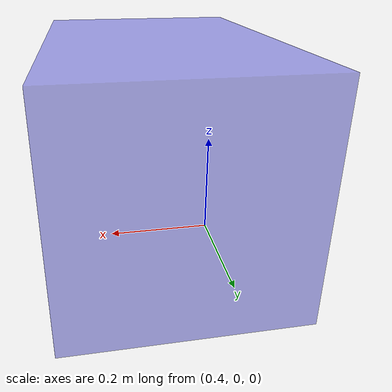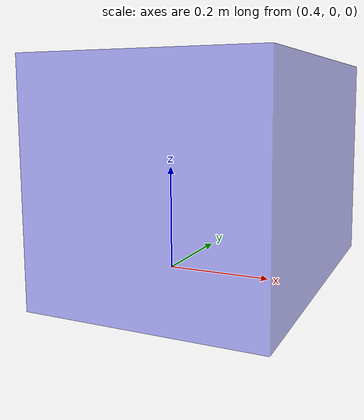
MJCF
<!-- Big block on the floor in front of the robot. -->
<mujoco model="floorblock_component">
  <worldbody>
    <body name="floorblock" pos="0.5 0 0.2">
      <geom name="floorblock_visual" type="box" size="0.2 0.3 0.2" rgba="0.3 0.3 0.9 0.5"
            contype="0" conaffinity="0" group="0"/>
      <geom name="floorblock_collision" type="box" size="0.2 0.3 0.2"
            contype="1" conaffinity="1" group="3"/>
    </body>
  </worldbody>
</mujoco>
